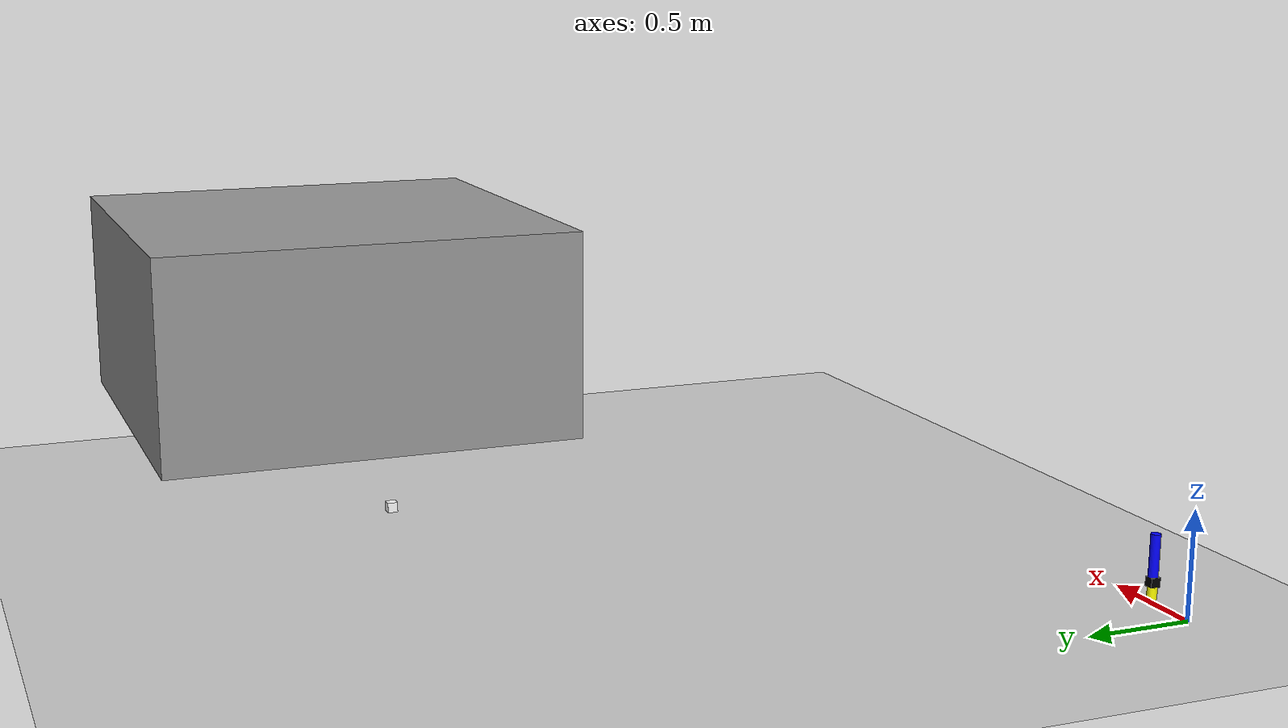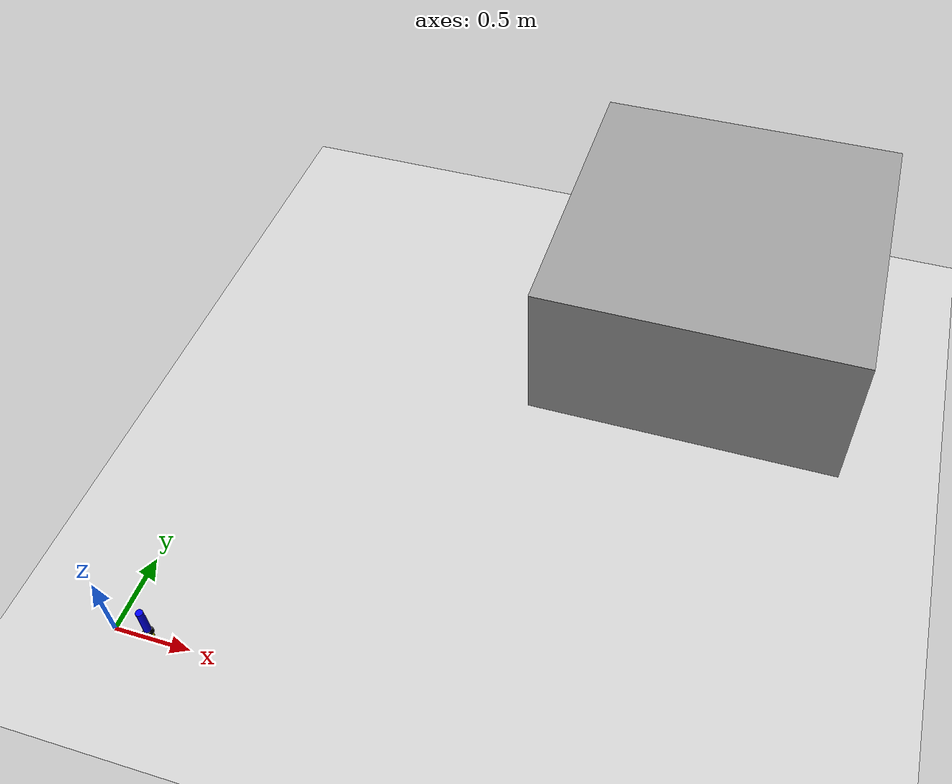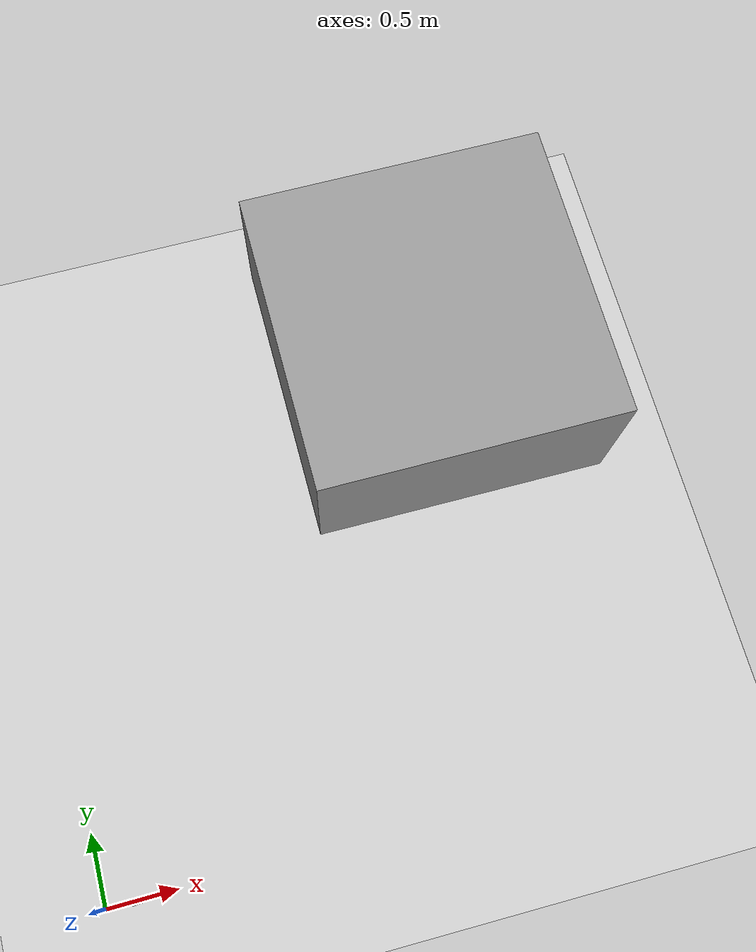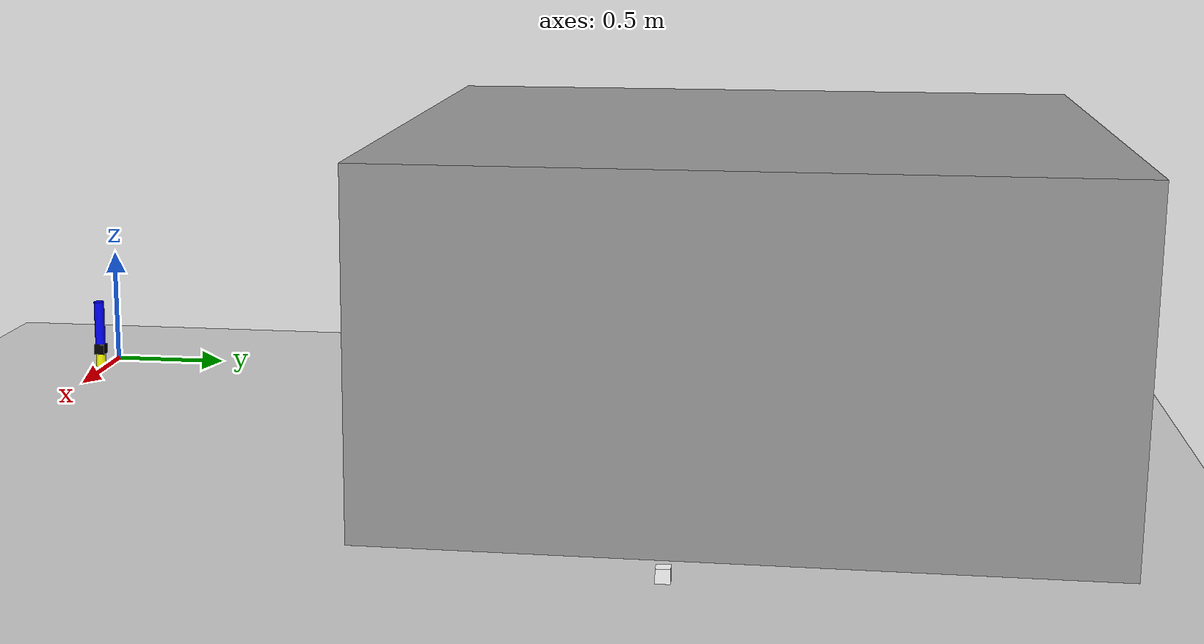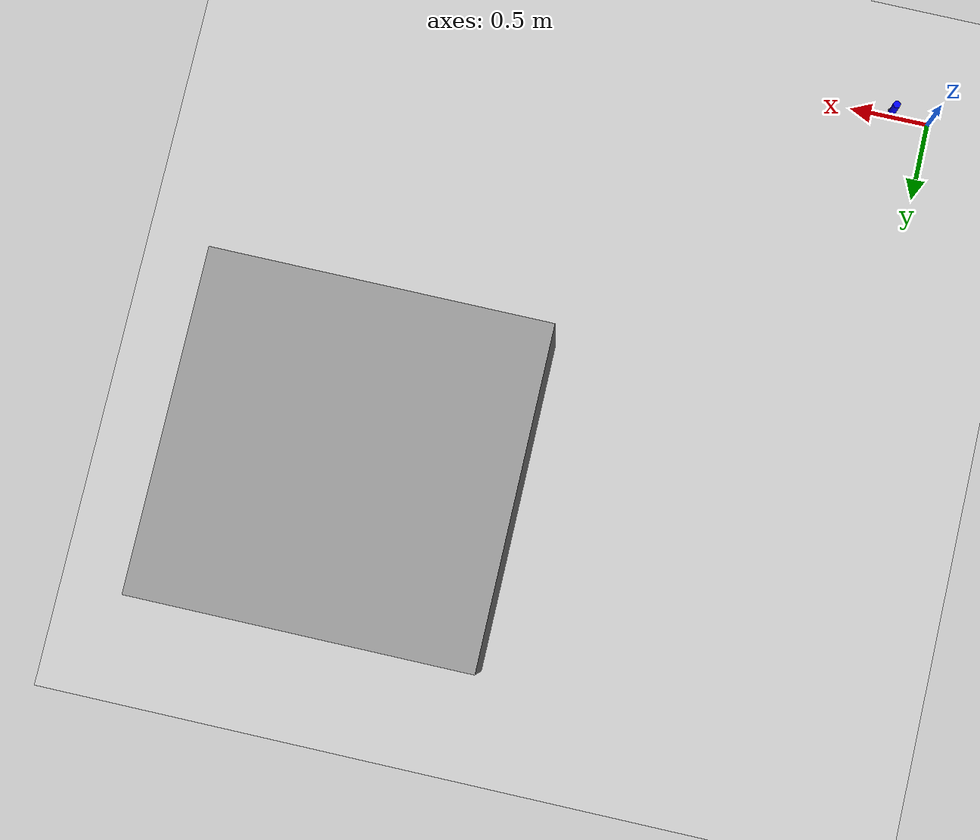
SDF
<?xml version="1.0" ?>
<sdf version="1.6">
  <world name="CRANE-X7 with Table">
    <scene>
      <shadows>0</shadows>
    </scene>

    <include>
      <uri>model://sun</uri>
    </include>

      <!-- X7を机の端に配置するため、机を移動、回転する -->

    <model name="wood_cube_5cm">
      <include>
        <uri>model://wood_cube_5cm</uri>
      </include>

      <pose>2.75 2.75 0 0 0 0</pose>
    </model>

    <model name="club">
      <include>
        <uri>model://club</uri>
      </include>

      <pose>0.25 0 0 0 0 0</pose>
    </model>

    <model name="box1">
      <include>
        <uri>model://box1</uri>
      </include>

      <pose>3 3 1 0 0 0</pose>
    </model>

    <model name="ground_plane">
      <include>
        <uri>model://ground_plane</uri>
      </include>

      <joint name='ground_joint' type='fixed'>
        <parent>ground_plane::link</parent>
        <child>table::link</child>
      </joint>
    </model>
  </world>
</sdf>

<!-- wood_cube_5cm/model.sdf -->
<sdf version="1.5">
  <model name="wood_cube_5cm">
    <link name="link">
      <pose>0 0 0.025 0 0 0</pose>
      <inertial>
        <mass>0.0565</mass>
        <inertia>
          <ixx>2.3541666666666672e-05</ixx>
          <ixy>0</ixy>
          <ixz>0</ixz>
          <iyy>2.3541666666666672e-05</iyy>
          <iyz>0</iyz>
          <izz>2.3541666666666672e-05</izz>
        </inertia>
      </inertial>

      <collision name="collision">
        <geometry>
          <box>
            <size>0.05 0.05 0.05</size>
          </box>
        </geometry>
        <surface>
          <contact>
            <!-- Red Pine coefficients for longitudinal axis of the wood
                 according to:
                 http://www.fpl.fs.fed.us/documnts/fplgtr/fplgtr113/ch04.pdf -->
            <poissons_ratio>0.347</poissons_ratio>
            <elastic_modulus>8.8e+09</elastic_modulus>
            <ode>
              <kp>100000</kp>
              <kd>1</kd>
              <max_vel>1.0</max_vel>
              <min_depth>0.001</min_depth>
            </ode>
          </contact>
          <friction>
            <torsional>
              <coefficient>1.0</coefficient>
              <use_patch_radius>0</use_patch_radius>
              <surface_radius>0.05</surface_radius>
            </torsional>
          </friction>
        </surface>
      </collision>

      <visual name="visual">
        <geometry>
          <box>
            <size>0.05 0.05 0.05</size>
          </box>
        </geometry>
        <material><diffuse>1 1 1 1</diffuse><specular>0.1 0.1 0.1 1</specular></material>
      </visual>

    </link>
  </model>
</sdf>

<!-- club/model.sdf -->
<sdf version="1.4">
<model name="club">
  <pose>0 0 0.04 0 0 0</pose>
    <link name="link">
      <inertial>
        <mass>0.1</mass>
        <inertia>
          <ixx>3e-3</ixx>
          <ixy>0.0</ixy>
          <ixz>0.0</ixz>
          <iyy>3e-3</iyy>
          <iyz>0.0</iyz>
          <izz>2.53125e-5</izz>

        </inertia>
      </inertial>
      <collision name="collision">
        <geometry>
          <mesh>
            <uri>model://club/meshes/club.dae</uri>
          </mesh>
        </geometry>
        <surface>
          <contact>
            <poissons_ratio>0.347</poissons_ratio>
            <elastic_modulus>8.8e+09</elastic_modulus>
            <ode>
              <kp>100000</kp>
              <kd>1</kd>
              <max_vel>1.0</max_vel>
              <min_depth>0.001</min_depth>
            </ode>
          </contact>
          <friction>
            <torsional>
              <coefficient>1.0</coefficient>
              <use_patch_radius>0</use_patch_radius>
              <surface_radius>0.065</surface_radius>
            </torsional>
          </friction>
        </surface>
      </collision>
      <visual name="visual">
        <geometry>
          <mesh>
          <uri>model://club/meshes/club.dae</uri>
          </mesh>
        </geometry>
      </visual>
    </link>
  </model>
</sdf>

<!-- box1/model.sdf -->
<sdf version='1.6'>
  <model name='box1'>
    <link name='link'>
      <inertial>
        <mass>100</mass>
        <inertia>
          <ixx>16.6667</ixx>
          <ixy>0</ixy>
          <ixz>0</ixz>
          <iyy>16.6667</iyy>
          <iyz>0</iyz>
          <izz>16.6667</izz>
        </inertia>
        <pose frame=''>0 0 0 0 -0 0</pose>
      </inertial>
      <self_collide>0</self_collide>
      <enable_wind>0</enable_wind>
      <kinematic>0</kinematic>
      <pose frame=''>0 0 0 0 -0 0</pose>
      <gravity>1</gravity>
      <visual name='visual'>
        <geometry>
          <box>
            <size>2 2 1</size>
          </box>
        </geometry>
        <material>
          <script>
            <name>Gazebo/Grey</name>
            <uri>file://media/materials/scripts/gazebo.material</uri>
          </script>
          <shader type='vertex'>
            <normal_map>__default__</normal_map>
          </shader>
          <ambient>0.3 0.3 0.3 1</ambient>
          <diffuse>0.7 0.7 0.7 1</diffuse>
          <specular>0.01 0.01 0.01 1</specular>
          <emissive>0 0 0 1</emissive>
        </material>
        <pose frame=''>0 0 0 0 -0 0</pose>
        <transparency>0</transparency>
        <cast_shadows>1</cast_shadows>
      </visual>
      <collision name='collision'>
        <laser_retro>0</laser_retro>
        <max_contacts>10</max_contacts>
        <pose frame=''>0 0 0 0 -0 0</pose>
        <geometry>
          <box>
            <size>2 2 1</size>
          </box>
        </geometry>
        <surface>
          <friction>
            <ode>
              <mu>1</mu>
              <mu2>1</mu2>
              <fdir1>0 0 0</fdir1>
              <slip1>0</slip1>
              <slip2>0</slip2>
            </ode>
            <torsional>
              <coefficient>1</coefficient>
              <patch_radius>0</patch_radius>
              <surface_radius>0</surface_radius>
              <use_patch_radius>1</use_patch_radius>
              <ode>
                <slip>0</slip>
              </ode>
            </torsional>
          </friction>
          <bounce>
            <restitution_coefficient>0</restitution_coefficient>
            <threshold>1e+06</threshold>
          </bounce>
          <contact>
            <collide_without_contact>0</collide_without_contact>
            <collide_without_contact_bitmask>1</collide_without_contact_bitmask>
            <collide_bitmask>1</collide_bitmask>
            <ode>
              <soft_cfm>0</soft_cfm>
              <soft_erp>0.2</soft_erp>
              <kp>1e+13</kp>
              <kd>1</kd>
              <max_vel>0.01</max_vel>
              <min_depth>0</min_depth>
            </ode>
            <bullet>
              <split_impulse>1</split_impulse>
              <split_impulse_penetration_threshold>-0.01</split_impulse_penetration_threshold>
              <soft_cfm>0</soft_cfm>
              <soft_erp>0.2</soft_erp>
              <kp>1e+13</kp>
              <kd>1</kd>
            </bullet>
          </contact>
        </surface>
      </collision>
    </link>
    <static>0</static>
    <allow_auto_disable>1</allow_auto_disable>
  </model>
</sdf>
